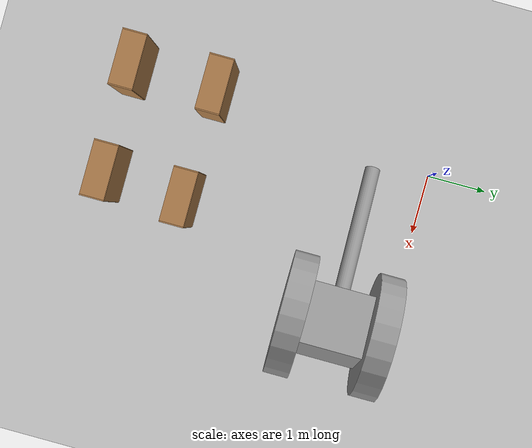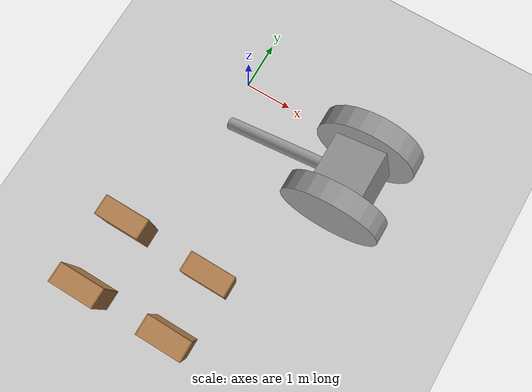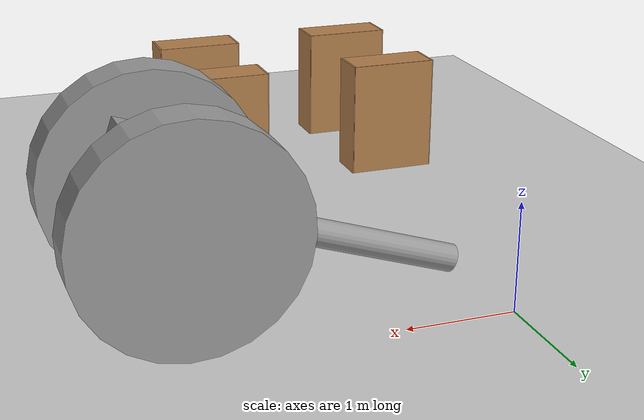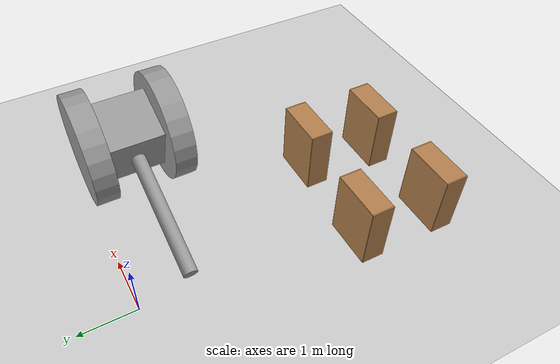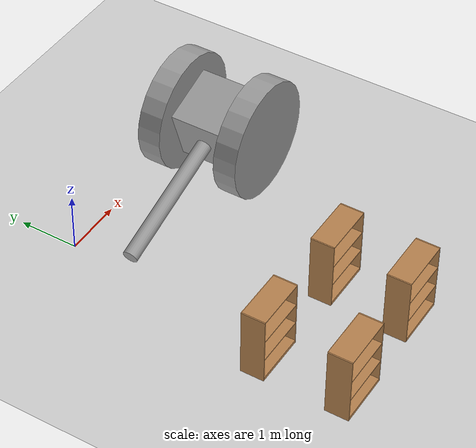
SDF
<sdf version="1.6">
 <world name="default">
  <model name="ground_plane">
   <static>1</static>
   <link name="link">
    <collision name="collision">
     <geometry><plane><normal>0 0 1</normal><size>100 100</size></plane></geometry>
     <surface><friction><ode><mu>100</mu><mu2>50</mu2></ode></friction></surface>
    </collision>
    <visual name="visual">
     <cast_shadows>0</cast_shadows>
     <geometry><plane><normal>0 0 1</normal><size>100 100</size></plane></geometry>
     <material>
      <script><uri>file://media/materials/scripts/gazebo.material</uri><name>Gazebo/Grey</name></script>
     </material>
    </visual>
   </link>
  </model>
  <model name="robot">
   <link name="link_2">
    <pose>0.001415 0.001415 -0.407495 0 -0 0</pose>
    <inertial>
     <mass>1</mass>
     <inertia>
      <ixx>0.166667</ixx>
      <ixy>0</ixy>
      <ixz>0</ixz>
      <iyy>0.166667</iyy>
      <iyz>0</iyz>
      <izz>0.166667</izz>
     </inertia>
    </inertial>
    <visual name="visual">
     <geometry><box><size>1 1 1</size></box></geometry>
     <material>
      <lighting>1</lighting>
      <script><uri>file://media/materials/scripts/gazebo.material</uri><name>Gazebo/Grey</name></script>
      <shader type="pixel"><normal_map>__default__</normal_map></shader>
      <ambient>0.3 0.3 0.3 1</ambient>
      <diffuse>0.7 0.7 0.7 1</diffuse>
      <specular>0.01 0.01 0.01 1</specular>
      <emissive>0 0 0 1</emissive>
     </material>
    </visual>
    <collision name="collision">
     <geometry><box><size>1 1 1</size></box></geometry>
     <surface>
      <friction>
       <ode><mu>1</mu><mu2>1</mu2><fdir1>0 0 0</fdir1><slip1>0</slip1><slip2>0</slip2></ode>
       <torsional>
        <coefficient>1</coefficient>
        <patch_radius>0</patch_radius>
        <surface_radius>0</surface_radius>
        <use_patch_radius>1</use_patch_radius>
        <ode><slip>0</slip></ode>
       </torsional>
      </friction>
      <bounce><restitution_coefficient>0</restitution_coefficient><threshold>1e+06</threshold></bounce>
      <contact>
       <collide_without_contact>0</collide_without_contact>
       <collide_without_contact_bitmask>1</collide_without_contact_bitmask>
       <collide_bitmask>1</collide_bitmask>
       <ode>
        <soft_cfm>0</soft_cfm>
        <soft_erp>0.2</soft_erp>
        <kp>1e+13</kp>
        <kd>1</kd>
        <max_vel>0.01</max_vel>
        <min_depth>0</min_depth>
       </ode>
       <bullet>
        <split_impulse>1</split_impulse>
        <split_impulse_penetration_threshold>-0.01</split_impulse_penetration_threshold>
        <soft_cfm>0</soft_cfm>
        <soft_erp>0.2</soft_erp>
        <kp>1e+13</kp>
        <kd>1</kd>
       </bullet>
      </contact>
     </surface>
    </collision>
   </link>
   <link name="link_4">
    <pose>0.001415 -0.698682 -0.407495 1.5707 -0 0</pose>
    <inertial>
     <mass>1</mass>
     <inertia><ixx>0.145833</ixx><ixy>0</ixy><ixz>0</ixz><iyy>0.145833</iyy><iyz>0</iyz><izz>0.125</izz></inertia>
    </inertial>
    <visual name="visual">
     <geometry><cylinder><radius>1</radius><length>0.4</length></cylinder></geometry>
     <material>
      <lighting>1</lighting>
      <script><uri>file://media/materials/scripts/gazebo.material</uri><name>Gazebo/Grey</name></script>
      <shader type="pixel"><normal_map>__default__</normal_map></shader>
      <ambient>0.3 0.3 0.3 1</ambient>
      <diffuse>0.7 0.7 0.7 1</diffuse>
      <specular>0.01 0.01 0.01 1</specular>
      <emissive>0 0 0 1</emissive>
     </material>
    </visual>
    <collision name="collision">
     <geometry><cylinder><radius>1</radius><length>0.4</length></cylinder></geometry>
     <surface>
      <friction>
       <ode><mu>1</mu><mu2>1</mu2><fdir1>0 0 0</fdir1><slip1>0</slip1><slip2>0</slip2></ode>
       <torsional>
        <coefficient>1</coefficient>
        <patch_radius>0</patch_radius>
        <surface_radius>0</surface_radius>
        <use_patch_radius>1</use_patch_radius>
        <ode><slip>0</slip></ode>
       </torsional>
      </friction>
      <bounce><restitution_coefficient>0</restitution_coefficient><threshold>1e+06</threshold></bounce>
      <contact>
       <collide_without_contact>0</collide_without_contact>
       <collide_without_contact_bitmask>1</collide_without_contact_bitmask>
       <collide_bitmask>1</collide_bitmask>
       <ode>
        <soft_cfm>0</soft_cfm>
        <soft_erp>0.2</soft_erp>
        <kp>1e+13</kp>
        <kd>1</kd>
        <max_vel>0.01</max_vel>
        <min_depth>0</min_depth>
       </ode>
       <bullet>
        <split_impulse>1</split_impulse>
        <split_impulse_penetration_threshold>-0.01</split_impulse_penetration_threshold>
        <soft_cfm>0</soft_cfm>
        <soft_erp>0.2</soft_erp>
        <kp>1e+13</kp>
        <kd>1</kd>
       </bullet>
      </contact>
     </surface>
    </collision>
   </link>
   <link name="link_4_clone">
    <pose>0.001415 0.701511 -0.407495 1.5707 -0 0</pose>
    <inertial>
     <mass>1</mass>
     <inertia><ixx>0.145833</ixx><ixy>0</ixy><ixz>0</ixz><iyy>0.145833</iyy><iyz>0</iyz><izz>0.125</izz></inertia>
    </inertial>
    <visual name="visual">
     <geometry><cylinder><radius>1</radius><length>0.4</length></cylinder></geometry>
     <material>
      <lighting>1</lighting>
      <script><uri>file://media/materials/scripts/gazebo.material</uri><name>Gazebo/Grey</name></script>
      <shader type="pixel"><normal_map>__default__</normal_map></shader>
      <ambient>0.3 0.3 0.3 1</ambient>
      <diffuse>0.7 0.7 0.7 1</diffuse>
      <specular>0.01 0.01 0.01 1</specular>
      <emissive>0 0 0 1</emissive>
     </material>
    </visual>
    <collision name="collision">
     <geometry><cylinder><radius>1</radius><length>0.4</length></cylinder></geometry>
     <surface>
      <friction>
       <ode><mu>1</mu><mu2>1</mu2><fdir1>0 0 0</fdir1><slip1>0</slip1><slip2>0</slip2></ode>
       <torsional>
        <coefficient>1</coefficient>
        <patch_radius>0</patch_radius>
        <surface_radius>0</surface_radius>
        <use_patch_radius>1</use_patch_radius>
        <ode><slip>0</slip></ode>
       </torsional>
      </friction>
      <bounce><restitution_coefficient>0</restitution_coefficient><threshold>1e+06</threshold></bounce>
      <contact>
       <collide_without_contact>0</collide_without_contact>
       <collide_without_contact_bitmask>1</collide_without_contact_bitmask>
       <collide_bitmask>1</collide_bitmask>
       <ode>
        <soft_cfm>0</soft_cfm>
        <soft_erp>0.2</soft_erp>
        <kp>1e+13</kp>
        <kd>1</kd>
        <max_vel>0.01</max_vel>
        <min_depth>0</min_depth>
       </ode>
       <bullet>
        <split_impulse>1</split_impulse>
        <split_impulse_penetration_threshold>-0.01</split_impulse_penetration_threshold>
        <soft_cfm>0</soft_cfm>
        <soft_erp>0.2</soft_erp>
        <kp>1e+13</kp>
        <kd>1</kd>
       </bullet>
      </contact>
     </surface>
    </collision>
   </link>
   <link name="link_6">
    <pose>-0.004244 -0.004244 1.22248 0 -0 0</pose>
    <inertial>
     <mass>0.149694</mass>
     <inertia>
      <ixx>0.0643321</ixx>
      <ixy>0</ixy>
      <ixz>0</ixz>
      <iyy>0.0643321</iyy>
      <iyz>0</iyz>
      <izz>0.00123941</izz>
     </inertia>
    </inertial>
    <visual name="visual">
     <geometry><cylinder><radius>0.128683</radius><length>2.25996</length></cylinder></geometry>
     <material>
      <lighting>1</lighting>
      <script><uri>file://media/materials/scripts/gazebo.material</uri><name>Gazebo/Grey</name></script>
      <shader type="pixel"/>
      <ambient>0.3 0.3 0.3 1</ambient>
      <diffuse>0.7 0.7 0.7 1</diffuse>
      <specular>0.01 0.01 0.01 1</specular>
      <emissive>0 0 0 1</emissive>
     </material>
    </visual>
    <collision name="collision">
     <geometry><cylinder><radius>0.128683</radius><length>2.25996</length></cylinder></geometry>
     <surface>
      <friction>
       <ode><mu>1</mu><mu2>1</mu2><fdir1>0 0 0</fdir1><slip1>0</slip1><slip2>0</slip2></ode>
       <torsional>
        <coefficient>1</coefficient>
        <patch_radius>0</patch_radius>
        <surface_radius>0</surface_radius>
        <use_patch_radius>1</use_patch_radius>
        <ode><slip>0</slip></ode>
       </torsional>
      </friction>
      <bounce><restitution_coefficient>0</restitution_coefficient><threshold>1e+06</threshold></bounce>
      <contact>
       <collide_without_contact>0</collide_without_contact>
       <collide_without_contact_bitmask>1</collide_without_contact_bitmask>
       <collide_bitmask>1</collide_bitmask>
       <ode>
        <soft_cfm>0</soft_cfm>
        <soft_erp>0.2</soft_erp>
        <kp>1e+13</kp>
        <kd>1</kd>
        <max_vel>0.01</max_vel>
        <min_depth>0</min_depth>
       </ode>
       <bullet>
        <split_impulse>1</split_impulse>
        <split_impulse_penetration_threshold>-0.01</split_impulse_penetration_threshold>
        <soft_cfm>0</soft_cfm>
        <soft_erp>0.2</soft_erp>
        <kp>1e+13</kp>
        <kd>1</kd>
       </bullet>
      </contact>
     </surface>
    </collision>
   </link>
   <joint name="link_2_JOINT_0" type="revolute">
    <parent>link_2</parent>
    <child>link_4</child>
    <axis>
     <xyz>1 0 0</xyz>
     <use_parent_model_frame>0</use_parent_model_frame>
     <limit>
      <lower>-1.79769e+308</lower>
      <upper>1.79769e+308</upper>
      <effort>-1</effort>
      <velocity>-1</velocity>
     </limit>
     <dynamics>
      <spring_reference>0</spring_reference>
      <spring_stiffness>0</spring_stiffness>
      <damping>0</damping>
     </dynamics>
    </axis>
    <physics>
     <ode><limit><cfm>0</cfm><erp>0.2</erp></limit><suspension><cfm>0</cfm><erp>0.2</erp></suspension></ode>
    </physics>
   </joint>
   <joint name="link_2_JOINT_1" type="revolute">
    <parent>link_2</parent>
    <child>link_4_clone</child>
    <axis>
     <xyz>1 0 0</xyz>
     <use_parent_model_frame>0</use_parent_model_frame>
     <limit>
      <lower>-1.79769e+308</lower>
      <upper>1.79769e+308</upper>
      <effort>-1</effort>
      <velocity>-1</velocity>
     </limit>
     <dynamics>
      <spring_reference>0</spring_reference>
      <spring_stiffness>0</spring_stiffness>
      <damping>0</damping>
     </dynamics>
    </axis>
    <physics>
     <ode><limit><cfm>0</cfm><erp>0.2</erp></limit><suspension><cfm>0</cfm><erp>0.2</erp></suspension></ode>
    </physics>
   </joint>
   <joint name="link_2_JOINT_2" type="fixed">
    <parent>link_2</parent>
    <child>link_6</child>
    <pose>0 0 0 0 -0.03 0</pose>
    <physics>
     <ode><limit><cfm>0</cfm><erp>0.2</erp></limit><suspension><cfm>0</cfm><erp>0.2</erp></suspension></ode>
    </physics>
   </joint>
   <static>0</static>
   <pose>2.37895 -0.939021 0.86983 3.14159 -1.24913 3.14127</pose>
  </model>
  <model name="bookshelf">
   <static>1</static>
   <link name="link">
    <inertial><mass>1</mass></inertial>
    <collision name="back">
     <pose>0 0.005 0.6 0 -0 0</pose>
     <geometry><box><size>0.9 0.01 1.2</size></box></geometry>
    </collision>
    <visual name="visual1">
     <pose>0 0.005 0.6 0 -0 0</pose>
     <geometry><box><size>0.9 0.01 1.2</size></box></geometry>
     <material>
      <script><uri>file://media/materials/scripts/gazebo.material</uri><name>Gazebo/Wood</name></script>
     </material>
    </visual>
    <collision name="left_side">
     <pose>0.45 -0.195 0.6 0 -0 0</pose>
     <geometry><box><size>0.02 0.4 1.2</size></box></geometry>
    </collision>
    <visual name="visual2">
     <pose>0.45 -0.195 0.6 0 -0 0</pose>
     <geometry><box><size>0.02 0.4 1.2</size></box></geometry>
     <material>
      <script><uri>file://media/materials/scripts/gazebo.material</uri><name>Gazebo/Wood</name></script>
     </material>
    </visual>
    <collision name="right_side">
     <pose>-0.45 -0.195 0.6 0 -0 0</pose>
     <geometry><box><size>0.02 0.4 1.2</size></box></geometry>
    </collision>
    <visual name="visual3">
     <pose>-0.45 -0.195 0.6 0 -0 0</pose>
     <geometry><box><size>0.02 0.4 1.2</size></box></geometry>
     <material>
      <script><uri>file://media/materials/scripts/gazebo.material</uri><name>Gazebo/Wood</name></script>
     </material>
    </visual>
    <collision name="bottom">
     <pose>0 -0.195 0.03 0 -0 0</pose>
     <geometry><box><size>0.88 0.4 0.06</size></box></geometry>
    </collision>
    <visual name="visual4">
     <pose>0 -0.195 0.03 0 -0 0</pose>
     <geometry><box><size>0.88 0.4 0.06</size></box></geometry>
     <material>
      <script><uri>file://media/materials/scripts/gazebo.material</uri><name>Gazebo/Wood</name></script>
     </material>
    </visual>
    <collision name="top">
     <pose>0 -0.195 1.19 0 -0 0</pose>
     <geometry><box><size>0.88 0.4 0.02</size></box></geometry>
    </collision>
    <visual name="visual5">
     <pose>0 -0.195 1.19 0 -0 0</pose>
     <geometry><box><size>0.88 0.4 0.02</size></box></geometry>
     <material>
      <script><uri>file://media/materials/scripts/gazebo.material</uri><name>Gazebo/Wood</name></script>
     </material>
    </visual>
    <collision name="low_shelf">
     <pose>0 -0.195 0.43 0 -0 0</pose>
     <geometry><box><size>0.88 0.4 0.02</size></box></geometry>
    </collision>
    <visual name="visual6">
     <pose>0 -0.195 0.43 0 -0 0</pose>
     <geometry><box><size>0.88 0.4 0.02</size></box></geometry>
     <material>
      <script><uri>file://media/materials/scripts/gazebo.material</uri><name>Gazebo/Wood</name></script>
     </material>
    </visual>
    <collision name="high_shelf">
     <pose>0 -0.195 0.8 0 -0 0</pose>
     <geometry><box><size>0.88 0.4 0.02</size></box></geometry>
    </collision>
    <visual name="visual7">
     <pose>0 -0.195 0.8 0 -0 0</pose>
     <geometry><box><size>0.88 0.4 0.02</size></box></geometry>
     <material>
      <script><uri>file://media/materials/scripts/gazebo.material</uri><name>Gazebo/Wood</name></script>
     </material>
    </visual>
   </link>
   <pose>-0.408388 -3.57021 0 0 -0 0</pose>
  </model>
  <model name="bookshelf_0">
   <static>1</static>
   <link name="link">
    <inertial><mass>1</mass></inertial>
    <collision name="back">
     <pose>0 0.005 0.6 0 -0 0</pose>
     <geometry><box><size>0.9 0.01 1.2</size></box></geometry>
    </collision>
    <visual name="visual1">
     <pose>0 0.005 0.6 0 -0 0</pose>
     <geometry><box><size>0.9 0.01 1.2</size></box></geometry>
     <material>
      <script><uri>file://media/materials/scripts/gazebo.material</uri><name>Gazebo/Wood</name></script>
     </material>
    </visual>
    <collision name="left_side">
     <pose>0.45 -0.195 0.6 0 -0 0</pose>
     <geometry><box><size>0.02 0.4 1.2</size></box></geometry>
    </collision>
    <visual name="visual2">
     <pose>0.45 -0.195 0.6 0 -0 0</pose>
     <geometry><box><size>0.02 0.4 1.2</size></box></geometry>
     <material>
      <script><uri>file://media/materials/scripts/gazebo.material</uri><name>Gazebo/Wood</name></script>
     </material>
    </visual>
    <collision name="right_side">
     <pose>-0.45 -0.195 0.6 0 -0 0</pose>
     <geometry><box><size>0.02 0.4 1.2</size></box></geometry>
    </collision>
    <visual name="visual3">
     <pose>-0.45 -0.195 0.6 0 -0 0</pose>
     <geometry><box><size>0.02 0.4 1.2</size></box></geometry>
     <material>
      <script><uri>file://media/materials/scripts/gazebo.material</uri><name>Gazebo/Wood</name></script>
     </material>
    </visual>
    <collision name="bottom">
     <pose>0 -0.195 0.03 0 -0 0</pose>
     <geometry><box><size>0.88 0.4 0.06</size></box></geometry>
    </collision>
    <visual name="visual4">
     <pose>0 -0.195 0.03 0 -0 0</pose>
     <geometry><box><size>0.88 0.4 0.06</size></box></geometry>
     <material>
      <script><uri>file://media/materials/scripts/gazebo.material</uri><name>Gazebo/Wood</name></script>
     </material>
    </visual>
    <collision name="top">
     <pose>0 -0.195 1.19 0 -0 0</pose>
     <geometry><box><size>0.88 0.4 0.02</size></box></geometry>
    </collision>
    <visual name="visual5">
     <pose>0 -0.195 1.19 0 -0 0</pose>
     <geometry><box><size>0.88 0.4 0.02</size></box></geometry>
     <material>
      <script><uri>file://media/materials/scripts/gazebo.material</uri><name>Gazebo/Wood</name></script>
     </material>
    </visual>
    <collision name="low_shelf">
     <pose>0 -0.195 0.43 0 -0 0</pose>
     <geometry><box><size>0.88 0.4 0.02</size></box></geometry>
    </collision>
    <visual name="visual6">
     <pose>0 -0.195 0.43 0 -0 0</pose>
     <geometry><box><size>0.88 0.4 0.02</size></box></geometry>
     <material>
      <script><uri>file://media/materials/scripts/gazebo.material</uri><name>Gazebo/Wood</name></script>
     </material>
    </visual>
    <collision name="high_shelf">
     <pose>0 -0.195 0.8 0 -0 0</pose>
     <geometry><box><size>0.88 0.4 0.02</size></box></geometry>
    </collision>
    <visual name="visual7">
     <pose>0 -0.195 0.8 0 -0 0</pose>
     <geometry><box><size>0.88 0.4 0.02</size></box></geometry>
     <material>
      <script><uri>file://media/materials/scripts/gazebo.material</uri><name>Gazebo/Wood</name></script>
     </material>
    </visual>
   </link>
   <pose>1.44657 -3.64172 0 0 -0 0</pose>
  </model>
  <model name="bookshelf_1">
   <static>1</static>
   <link name="link">
    <inertial><mass>1</mass></inertial>
    <collision name="back">
     <pose>0 0.005 0.6 0 -0 0</pose>
     <geometry><box><size>0.9 0.01 1.2</size></box></geometry>
    </collision>
    <visual name="visual1">
     <pose>0 0.005 0.6 0 -0 0</pose>
     <geometry><box><size>0.9 0.01 1.2</size></box></geometry>
     <material>
      <script><uri>file://media/materials/scripts/gazebo.material</uri><name>Gazebo/Wood</name></script>
     </material>
    </visual>
    <collision name="left_side">
     <pose>0.45 -0.195 0.6 0 -0 0</pose>
     <geometry><box><size>0.02 0.4 1.2</size></box></geometry>
    </collision>
    <visual name="visual2">
     <pose>0.45 -0.195 0.6 0 -0 0</pose>
     <geometry><box><size>0.02 0.4 1.2</size></box></geometry>
     <material>
      <script><uri>file://media/materials/scripts/gazebo.material</uri><name>Gazebo/Wood</name></script>
     </material>
    </visual>
    <collision name="right_side">
     <pose>-0.45 -0.195 0.6 0 -0 0</pose>
     <geometry><box><size>0.02 0.4 1.2</size></box></geometry>
    </collision>
    <visual name="visual3">
     <pose>-0.45 -0.195 0.6 0 -0 0</pose>
     <geometry><box><size>0.02 0.4 1.2</size></box></geometry>
     <material>
      <script><uri>file://media/materials/scripts/gazebo.material</uri><name>Gazebo/Wood</name></script>
     </material>
    </visual>
    <collision name="bottom">
     <pose>0 -0.195 0.03 0 -0 0</pose>
     <geometry><box><size>0.88 0.4 0.06</size></box></geometry>
    </collision>
    <visual name="visual4">
     <pose>0 -0.195 0.03 0 -0 0</pose>
     <geometry><box><size>0.88 0.4 0.06</size></box></geometry>
     <material>
      <script><uri>file://media/materials/scripts/gazebo.material</uri><name>Gazebo/Wood</name></script>
     </material>
    </visual>
    <collision name="top">
     <pose>0 -0.195 1.19 0 -0 0</pose>
     <geometry><box><size>0.88 0.4 0.02</size></box></geometry>
    </collision>
    <visual name="visual5">
     <pose>0 -0.195 1.19 0 -0 0</pose>
     <geometry><box><size>0.88 0.4 0.02</size></box></geometry>
     <material>
      <script><uri>file://media/materials/scripts/gazebo.material</uri><name>Gazebo/Wood</name></script>
     </material>
    </visual>
    <collision name="low_shelf">
     <pose>0 -0.195 0.43 0 -0 0</pose>
     <geometry><box><size>0.88 0.4 0.02</size></box></geometry>
    </collision>
    <visual name="visual6">
     <pose>0 -0.195 0.43 0 -0 0</pose>
     <geometry><box><size>0.88 0.4 0.02</size></box></geometry>
     <material>
      <script><uri>file://media/materials/scripts/gazebo.material</uri><name>Gazebo/Wood</name></script>
     </material>
    </visual>
    <collision name="high_shelf">
     <pose>0 -0.195 0.8 0 -0 0</pose>
     <geometry><box><size>0.88 0.4 0.02</size></box></geometry>
    </collision>
    <visual name="visual7">
     <pose>0 -0.195 0.8 0 -0 0</pose>
     <geometry><box><size>0.88 0.4 0.02</size></box></geometry>
     <material>
      <script><uri>file://media/materials/scripts/gazebo.material</uri><name>Gazebo/Wood</name></script>
     </material>
    </visual>
   </link>
   <pose>-0.421147 -4.9899 0 0 -0 0</pose>
  </model>
  <model name="bookshelf_2">
   <static>1</static>
   <link name="link">
    <inertial><mass>1</mass></inertial>
    <collision name="back">
     <pose>0 0.005 0.6 0 -0 0</pose>
     <geometry><box><size>0.9 0.01 1.2</size></box></geometry>
    </collision>
    <visual name="visual1">
     <pose>0 0.005 0.6 0 -0 0</pose>
     <geometry><box><size>0.9 0.01 1.2</size></box></geometry>
     <material>
      <script><uri>file://media/materials/scripts/gazebo.material</uri><name>Gazebo/Wood</name></script>
     </material>
    </visual>
    <collision name="left_side">
     <pose>0.45 -0.195 0.6 0 -0 0</pose>
     <geometry><box><size>0.02 0.4 1.2</size></box></geometry>
    </collision>
    <visual name="visual2">
     <pose>0.45 -0.195 0.6 0 -0 0</pose>
     <geometry><box><size>0.02 0.4 1.2</size></box></geometry>
     <material>
      <script><uri>file://media/materials/scripts/gazebo.material</uri><name>Gazebo/Wood</name></script>
     </material>
    </visual>
    <collision name="right_side">
     <pose>-0.45 -0.195 0.6 0 -0 0</pose>
     <geometry><box><size>0.02 0.4 1.2</size></box></geometry>
    </collision>
    <visual name="visual3">
     <pose>-0.45 -0.195 0.6 0 -0 0</pose>
     <geometry><box><size>0.02 0.4 1.2</size></box></geometry>
     <material>
      <script><uri>file://media/materials/scripts/gazebo.material</uri><name>Gazebo/Wood</name></script>
     </material>
    </visual>
    <collision name="bottom">
     <pose>0 -0.195 0.03 0 -0 0</pose>
     <geometry><box><size>0.88 0.4 0.06</size></box></geometry>
    </collision>
    <visual name="visual4">
     <pose>0 -0.195 0.03 0 -0 0</pose>
     <geometry><box><size>0.88 0.4 0.06</size></box></geometry>
     <material>
      <script><uri>file://media/materials/scripts/gazebo.material</uri><name>Gazebo/Wood</name></script>
     </material>
    </visual>
    <collision name="top">
     <pose>0 -0.195 1.19 0 -0 0</pose>
     <geometry><box><size>0.88 0.4 0.02</size></box></geometry>
    </collision>
    <visual name="visual5">
     <pose>0 -0.195 1.19 0 -0 0</pose>
     <geometry><box><size>0.88 0.4 0.02</size></box></geometry>
     <material>
      <script><uri>file://media/materials/scripts/gazebo.material</uri><name>Gazebo/Wood</name></script>
     </material>
    </visual>
    <collision name="low_shelf">
     <pose>0 -0.195 0.43 0 -0 0</pose>
     <geometry><box><size>0.88 0.4 0.02</size></box></geometry>
    </collision>
    <visual name="visual6">
     <pose>0 -0.195 0.43 0 -0 0</pose>
     <geometry><box><size>0.88 0.4 0.02</size></box></geometry>
     <material>
      <script><uri>file://media/materials/scripts/gazebo.material</uri><name>Gazebo/Wood</name></script>
     </material>
    </visual>
    <collision name="high_shelf">
     <pose>0 -0.195 0.8 0 -0 0</pose>
     <geometry><box><size>0.88 0.4 0.02</size></box></geometry>
    </collision>
    <visual name="visual7">
     <pose>0 -0.195 0.8 0 -0 0</pose>
     <geometry><box><size>0.88 0.4 0.02</size></box></geometry>
     <material>
      <script><uri>file://media/materials/scripts/gazebo.material</uri><name>Gazebo/Wood</name></script>
     </material>
    </visual>
   </link>
   <pose>1.37418 -4.95739 0 0 -0 0</pose>
  </model>
 </world>
</sdf>
